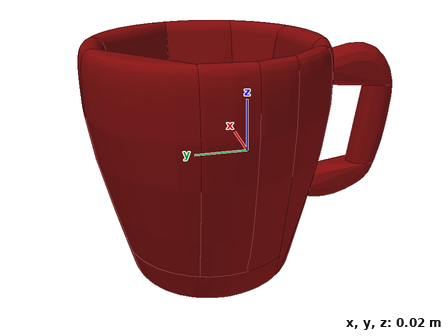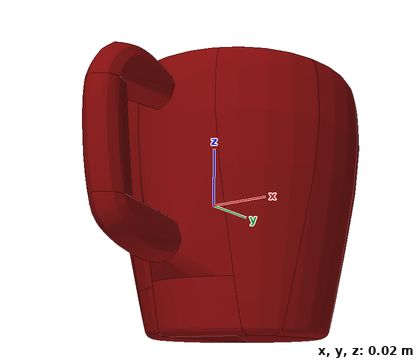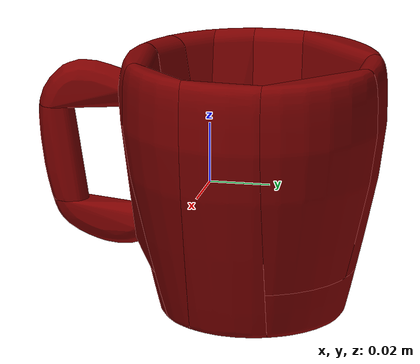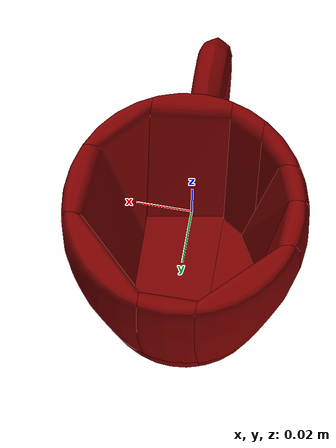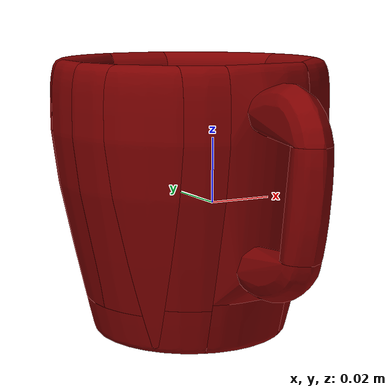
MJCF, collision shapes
<mujoco model="mug_70">
  <asset>
    <mesh file="visual/model_normalized_0.obj" name="model_normalized_0_vis" scale="0.11499999999999999 0.11499999999999999 0.11499999999999999" refquat="0.7071067811865472 0.0 0.0 0.7071067811865476"/>
    <texture type="2d" name="image0" file="visual/image0.png"/>
    <material name="m_mug" texture="image0" specular="0.5" shininess="0.359999993"/>
    <mesh file="collision/collision_mesh_collision_0.obj" name="mug_collision_mesh_0" scale="0.11499999999999999 0.11499999999999999 0.11499999999999999" refquat="0.7071067811865472 0.0 0.0 0.7071067811865476"/>
    <mesh file="collision/collision_mesh_collision_1.obj" name="mug_collision_mesh_1" scale="0.11499999999999999 0.11499999999999999 0.11499999999999999" refquat="0.7071067811865472 0.0 0.0 0.7071067811865476"/>
    <mesh file="collision/collision_mesh_collision_2.obj" name="mug_collision_mesh_2" scale="0.11499999999999999 0.11499999999999999 0.11499999999999999" refquat="0.7071067811865472 0.0 0.0 0.7071067811865476"/>
    <mesh file="collision/collision_mesh_collision_3.obj" name="mug_collision_mesh_3" scale="0.11499999999999999 0.11499999999999999 0.11499999999999999" refquat="0.7071067811865472 0.0 0.0 0.7071067811865476"/>
    <mesh file="collision/collision_mesh_collision_4.obj" name="mug_collision_mesh_4" scale="0.11499999999999999 0.11499999999999999 0.11499999999999999" refquat="0.7071067811865472 0.0 0.0 0.7071067811865476"/>
    <mesh file="collision/collision_mesh_collision_5.obj" name="mug_collision_mesh_5" scale="0.11499999999999999 0.11499999999999999 0.11499999999999999" refquat="0.7071067811865472 0.0 0.0 0.7071067811865476"/>
    <mesh file="collision/collision_mesh_collision_6.obj" name="mug_collision_mesh_6" scale="0.11499999999999999 0.11499999999999999 0.11499999999999999" refquat="0.7071067811865472 0.0 0.0 0.7071067811865476"/>
    <mesh file="collision/collision_mesh_collision_7.obj" name="mug_collision_mesh_7" scale="0.11499999999999999 0.11499999999999999 0.11499999999999999" refquat="0.7071067811865472 0.0 0.0 0.7071067811865476"/>
    <mesh file="collision/collision_mesh_collision_8.obj" name="mug_collision_mesh_8" scale="0.11499999999999999 0.11499999999999999 0.11499999999999999" refquat="0.7071067811865472 0.0 0.0 0.7071067811865476"/>
    <mesh file="collision/collision_mesh_collision_9.obj" name="mug_collision_mesh_9" scale="0.11499999999999999 0.11499999999999999 0.11499999999999999" refquat="0.7071067811865472 0.0 0.0 0.7071067811865476"/>
    <mesh file="collision/collision_mesh_collision_10.obj" name="mug_collision_mesh_10" scale="0.11499999999999999 0.11499999999999999 0.11499999999999999" refquat="0.7071067811865472 0.0 0.0 0.7071067811865476"/>
    <mesh file="collision/collision_mesh_collision_11.obj" name="mug_collision_mesh_11" scale="0.11499999999999999 0.11499999999999999 0.11499999999999999" refquat="0.7071067811865472 0.0 0.0 0.7071067811865476"/>
    <mesh file="collision/collision_mesh_collision_12.obj" name="mug_collision_mesh_12" scale="0.11499999999999999 0.11499999999999999 0.11499999999999999" refquat="0.7071067811865472 0.0 0.0 0.7071067811865476"/>
    <mesh file="collision/collision_mesh_collision_13.obj" name="mug_collision_mesh_13" scale="0.11499999999999999 0.11499999999999999 0.11499999999999999" refquat="0.7071067811865472 0.0 0.0 0.7071067811865476"/>
    <mesh file="collision/collision_mesh_collision_14.obj" name="mug_collision_mesh_14" scale="0.11499999999999999 0.11499999999999999 0.11499999999999999" refquat="0.7071067811865472 0.0 0.0 0.7071067811865476"/>
    <mesh file="collision/collision_mesh_collision_15.obj" name="mug_collision_mesh_15" scale="0.11499999999999999 0.11499999999999999 0.11499999999999999" refquat="0.7071067811865472 0.0 0.0 0.7071067811865476"/>
  </asset>
  <default>
    <default class="region">
      <geom group="1" conaffinity="0" contype="0" rgba="0 1 0 0"/>
    </default>
    <default class="collision">
      <geom group="0" rgba="0.5 0 0 0.5" density="1000.0"/>
    </default>
  </default>
  <worldbody>
    <body>
      <body name="object">
        <geom solimp="0.998 0.998 0.001" solref="0.001 1" density="100" friction="0.95 0.3 0.1" type="mesh" mesh="model_normalized_0_vis" conaffinity="0" contype="0" group="1" material="m_mug"/>
        <geom class="region" name="reg_bbox" type="box" pos="-1.2512000000021449e-06 0.00011287019999999758 1.6389225000001115e-05" size="0.0434868268 0.057958208299999994 0.043389660425"/>
        <geom mesh="mug_collision_mesh_0" type="mesh" class="collision"/>
        <geom mesh="mug_collision_mesh_1" type="mesh" class="collision"/>
        <geom mesh="mug_collision_mesh_2" type="mesh" class="collision"/>
        <geom mesh="mug_collision_mesh_3" type="mesh" class="collision"/>
        <geom mesh="mug_collision_mesh_4" type="mesh" class="collision"/>
        <geom mesh="mug_collision_mesh_5" type="mesh" class="collision"/>
        <geom mesh="mug_collision_mesh_6" type="mesh" class="collision"/>
        <geom mesh="mug_collision_mesh_7" type="mesh" class="collision"/>
        <geom mesh="mug_collision_mesh_8" type="mesh" class="collision"/>
        <geom mesh="mug_collision_mesh_9" type="mesh" class="collision"/>
        <geom mesh="mug_collision_mesh_10" type="mesh" class="collision"/>
        <geom mesh="mug_collision_mesh_11" type="mesh" class="collision"/>
        <geom mesh="mug_collision_mesh_12" type="mesh" class="collision"/>
        <geom mesh="mug_collision_mesh_13" type="mesh" class="collision"/>
        <geom mesh="mug_collision_mesh_14" type="mesh" class="collision"/>
        <geom mesh="mug_collision_mesh_15" type="mesh" class="collision"/>
        <geom rgba="0 0 0 0" size="0.038 0.01" pos="0 0.018 0.022" type="cylinder" name="liquid" class="region"/>
        <geom rgba="0 0 0 0 " size="0.028 0.034" pos="0 0.015 0.008" type="cylinder" name="reg_int" class="region"/>
      </body>
    </body>
  </worldbody>
</mujoco>
